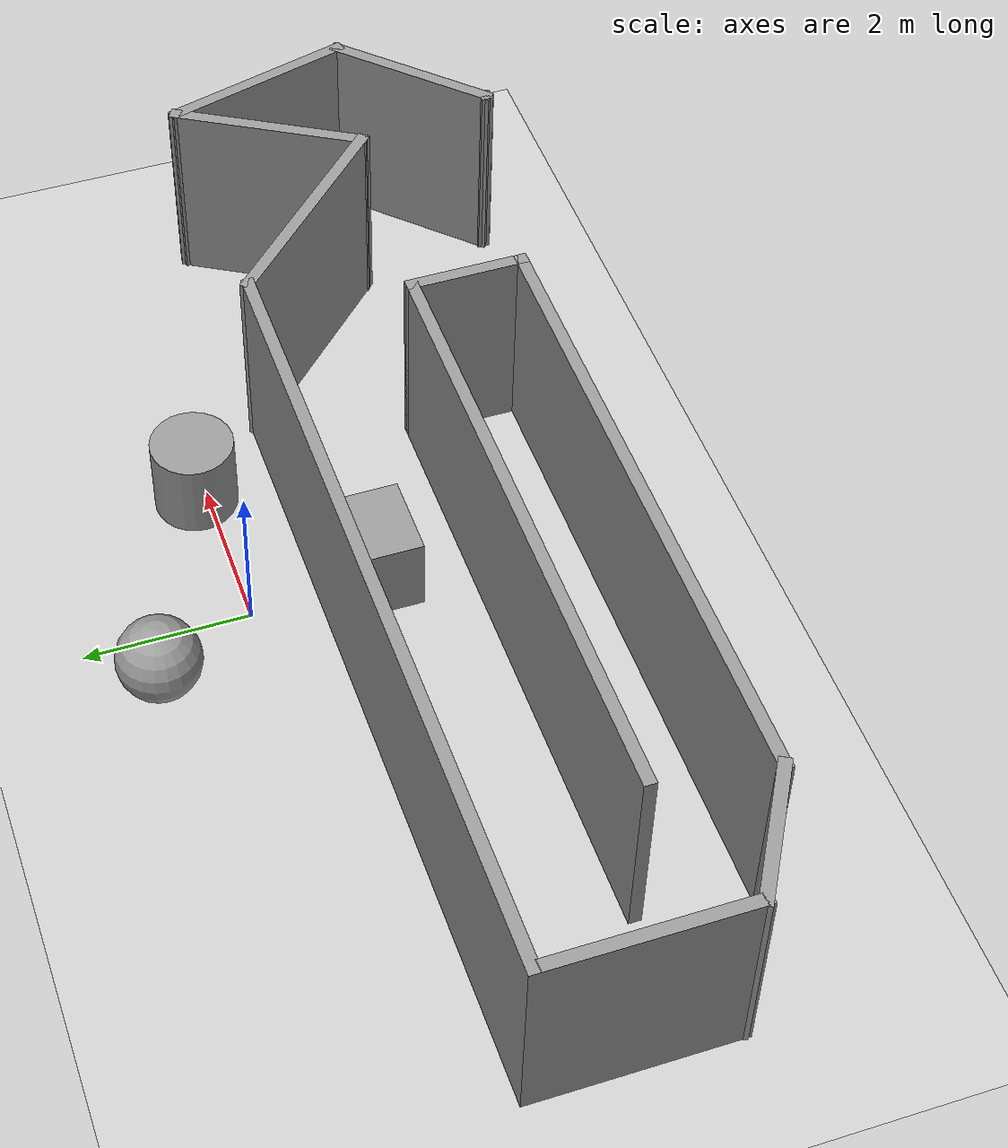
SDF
<sdf version="1.6">
 <world name="default">
  <light name="sun" type="directional">
   <pose>0 0 10 0 -0 0</pose>
   <diffuse>0.8 0.8 0.8 1</diffuse>
   <specular>0.2 0.2 0.2 1</specular>
   <attenuation>
    <range>1000</range>
    <constant>0.9</constant>
    <linear>0.01</linear>
    <quadratic>0.001</quadratic>
   </attenuation>
   <direction>-0.5 0.1 -0.9</direction>
  </light>
  <model name="ground_plane">
   <static>1</static>
   <link name="link">
    <collision name="collision">
     <geometry><plane><normal>0 0 1</normal><size>100 100</size></plane></geometry>
     <surface><friction><ode><mu>100</mu><mu2>50</mu2></ode></friction></surface>
    </collision>
    <visual name="visual">
     <cast_shadows>0</cast_shadows>
     <geometry><plane><normal>0 0 1</normal><size>100 100</size></plane></geometry>
     <material>
      <script><uri>file://media/materials/scripts/gazebo.material</uri><name>Gazebo/Grey</name></script>
     </material>
    </visual>
   </link>
  </model>
  <gravity>0 0 -9.8</gravity>
  <magnetic_field>6e-06 2.3e-05 -4.2e-05</magnetic_field>
  <atmosphere type="adiabatic"/>
  <physics name="default_physics" default="0" type="ode">
   <max_step_size>0.001</max_step_size>
   <real_time_factor>1</real_time_factor>
   <real_time_update_rate>1000</real_time_update_rate>
  </physics>
  <scene><ambient>0.4 0.4 0.4 1</ambient><background>0.7 0.7 0.7 1</background><shadows>1</shadows></scene>
  <spherical_coordinates>
   <surface_model>EARTH_WGS84</surface_model>
   <latitude_deg>0</latitude_deg>
   <longitude_deg>0</longitude_deg>
   <elevation>0</elevation>
   <heading_deg>0</heading_deg>
  </spherical_coordinates>
  <model name="unit_box">
   <pose>0.068124 -1.45501 0.499995 1e-05 0 1e-06</pose>
   <link name="link">
    <inertial>
     <mass>1</mass>
     <inertia>
      <ixx>0.166667</ixx>
      <ixy>0</ixy>
      <ixz>0</ixz>
      <iyy>0.166667</iyy>
      <iyz>0</iyz>
      <izz>0.166667</izz>
     </inertia>
    </inertial>
    <collision name="collision"><geometry><box><size>1 1 1</size></box></geometry></collision>
    <visual name="visual">
     <geometry><box><size>1 1 1</size></box></geometry>
     <material>
      <script><name>Gazebo/Grey</name><uri>file://media/materials/scripts/gazebo.material</uri></script>
     </material>
    </visual>
   </link>
  </model>
  <model name="unit_cylinder">
   <pose>1.93755 0.138894 0.499993 -3e-06 -4e-06 -0</pose>
   <link name="link">
    <inertial>
     <mass>1</mass>
     <inertia><ixx>0.145833</ixx><ixy>0</ixy><ixz>0</ixz><iyy>0.145833</iyy><iyz>0</iyz><izz>0.125</izz></inertia>
    </inertial>
    <collision name="collision">
     <geometry><cylinder><radius>0.5</radius><length>1</length></cylinder></geometry>
    </collision>
    <visual name="visual">
     <geometry><cylinder><radius>0.5</radius><length>1</length></cylinder></geometry>
     <material>
      <script><name>Gazebo/Grey</name><uri>file://media/materials/scripts/gazebo.material</uri></script>
     </material>
    </visual>
   </link>
  </model>
  <model name="unit_sphere">
   <pose>-0.651363 1.24379 0.5 0 -0 0</pose>
   <link name="link">
    <inertial>
     <mass>1</mass>
     <inertia><ixx>0.1</ixx><ixy>0</ixy><ixz>0</ixz><iyy>0.1</iyy><iyz>0</iyz><izz>0.1</izz></inertia>
    </inertial>
    <collision name="collision"><geometry><sphere><radius>0.5</radius></sphere></geometry></collision>
    <visual name="visual">
     <geometry><sphere><radius>0.5</radius></sphere></geometry>
     <material>
      <script><name>Gazebo/Grey</name><uri>file://media/materials/scripts/gazebo.material</uri></script>
     </material>
    </visual>
   </link>
  </model>
  <plugin name="collision_map_creator" filename="/home/workspace/catkin_ws/libcollision_map_creator.so"/>
  <model name="editor">
   <pose>-0.094594 -2.73933 0 0 -0 0</pose>
   <link name="Wall_0">
    <collision name="Wall_0_Collision">
     <geometry><box><size>7.5 0.15 2.5</size></box></geometry>
     <pose>0 0 1.25 0 -0 0</pose>
    </collision>
    <visual name="Wall_0_Visual">
     <pose>0 0 1.25 0 -0 0</pose>
     <geometry><box><size>7.5 0.15 2.5</size></box></geometry>
     <material>
      <script><uri>file://media/materials/scripts/gazebo.material</uri><name>Gazebo/Grey</name></script>
      <ambient>1 1 1 1</ambient>
     </material>
     <meta><layer>0</layer></meta>
    </visual>
    <pose>-1.39041 0.059327 0 0 -0 0</pose>
   </link>
   <link name="Wall_1">
    <collision name="Wall_1_Collision">
     <geometry><box><size>1.5 0.15 2.5</size></box></geometry>
     <pose>0 0 1.25 0 -0 0</pose>
    </collision>
    <visual name="Wall_1_Visual">
     <pose>0 0 1.25 0 -0 0</pose>
     <geometry><box><size>1.5 0.15 2.5</size></box></geometry>
     <material>
      <script><uri>file://media/materials/scripts/gazebo.material</uri><name>Gazebo/Grey</name></script>
      <ambient>1 1 1 1</ambient>
     </material>
     <meta><layer>0</layer></meta>
    </visual>
    <pose>2.28459 -0.615673 0 0 0 -1.5708</pose>
   </link>
   <link name="Wall_10">
    <collision name="Wall_10_Collision">
     <geometry><box><size>0.16 0.15 2.5</size></box></geometry>
     <pose>0 0 1.25 0 -0 0</pose>
    </collision>
    <visual name="Wall_10_Visual">
     <pose>0 0 1.25 0 -0 0</pose>
     <geometry><box><size>0.16 0.15 2.5</size></box></geometry>
     <material>
      <script><uri>file://media/materials/scripts/gazebo.material</uri><name>Gazebo/Grey</name></script>
      <ambient>1 1 1 1</ambient>
     </material>
     <meta><layer>0</layer></meta>
    </visual>
    <pose>5.21751 -1.87562 0 0 -0 0</pose>
   </link>
   <link name="Wall_2">
    <collision name="Wall_2_Collision">
     <geometry><box><size>7.75 0.15 2.5</size></box></geometry>
     <pose>0 0 1.25 0 -0 0</pose>
    </collision>
    <visual name="Wall_2_Visual">
     <pose>0 0 1.25 0 -0 0</pose>
     <geometry><box><size>7.75 0.15 2.5</size></box></geometry>
     <material>
      <script><uri>file://media/materials/scripts/gazebo.material</uri><name>Gazebo/Grey</name></script>
      <ambient>1 1 1 1</ambient>
     </material>
     <meta><layer>0</layer></meta>
    </visual>
    <pose>-1.51541 -1.29067 0 0 -0 3.14159</pose>
   </link>
   <link name="Wall_3">
    <collision name="Wall_3_Collision">
     <geometry><box><size>1.75 0.15 2.5</size></box></geometry>
     <pose>0 0 1.25 0 -0 0</pose>
    </collision>
    <visual name="Wall_3_Visual">
     <pose>0 0 1.25 0 -0 0</pose>
     <geometry><box><size>1.75 0.15 2.5</size></box></geometry>
     <material>
      <script><uri>file://media/materials/scripts/gazebo.material</uri><name>Gazebo/Grey</name></script>
      <ambient>1 1 1 1</ambient>
     </material>
     <meta><layer>0</layer></meta>
    </visual>
    <pose>-6.00823 -0.890673 0 0 -0 2.61799</pose>
   </link>
   <link name="Wall_4">
    <collision name="Wall_4_Collision">
     <geometry><box><size>2.5 0.15 2.5</size></box></geometry>
     <pose>0 0 1.25 0 -0 0</pose>
    </collision>
    <visual name="Wall_4_Visual">
     <pose>0 0 1.25 0 -0 0</pose>
     <geometry><box><size>2.5 0.15 2.5</size></box></geometry>
     <material>
      <script><uri>file://media/materials/scripts/gazebo.material</uri><name>Gazebo/Grey</name></script>
      <ambient>1 1 1 1</ambient>
     </material>
     <meta><layer>0</layer></meta>
    </visual>
    <pose>-6.70105 0.684327 0 0 -0 1.5708</pose>
   </link>
   <link name="Wall_5">
    <collision name="Wall_5_Collision">
     <geometry><box><size>9.75 0.15 2.5</size></box></geometry>
     <pose>0 0 1.25 0 -0 0</pose>
    </collision>
    <visual name="Wall_5_Visual">
     <pose>0 0 1.25 0 -0 0</pose>
     <geometry><box><size>9.75 0.15 2.5</size></box></geometry>
     <material>
      <script><uri>file://media/materials/scripts/gazebo.material</uri><name>Gazebo/Grey</name></script>
      <ambient>1 1 1 1</ambient>
     </material>
     <meta><layer>0</layer></meta>
    </visual>
    <pose>-1.90105 1.85933 0 0 -0 0</pose>
   </link>
   <link name="Wall_6">
    <collision name="Wall_6_Collision">
     <geometry><box><size>3 0.15 2.5</size></box></geometry>
     <pose>0 0 1.25 0 -0 0</pose>
    </collision>
    <visual name="Wall_6_Visual">
     <pose>0 0 1.25 0 -0 0</pose>
     <geometry><box><size>3 0.15 2.5</size></box></geometry>
     <material>
      <script><uri>file://media/materials/scripts/gazebo.material</uri><name>Gazebo/Grey</name></script>
      <ambient>1 1 1 1</ambient>
     </material>
     <meta><layer>0</layer></meta>
    </visual>
    <pose>3.90658 0.8517 0 0 0 -0.785398</pose>
   </link>
   <link name="Wall_7">
    <collision name="Wall_7_Collision">
     <geometry><box><size>2.5 0.15 2.5</size></box></geometry>
     <pose>0 0 1.25 0 -0 0</pose>
    </collision>
    <visual name="Wall_7_Visual">
     <pose>0 0 1.25 0 -0 0</pose>
     <geometry><box><size>2.5 0.15 2.5</size></box></geometry>
     <material>
      <script><uri>file://media/materials/scripts/gazebo.material</uri><name>Gazebo/Grey</name></script>
      <ambient>1 1 1 1</ambient>
     </material>
     <meta><layer>0</layer></meta>
    </visual>
    <pose>5.50171 0.861652 0 0 -0 1.0472</pose>
   </link>
   <link name="Wall_8">
    <collision name="Wall_8_Collision">
     <geometry><box><size>2.5 0.15 2.5</size></box></geometry>
     <pose>0 0 1.25 0 -0 0</pose>
    </collision>
    <visual name="Wall_8_Visual">
     <pose>0 0 1.25 0 -0 0</pose>
     <geometry><box><size>2.5 0.15 2.5</size></box></geometry>
     <material>
      <script><uri>file://media/materials/scripts/gazebo.material</uri><name>Gazebo/Grey</name></script>
      <ambient>1 1 1 1</ambient>
     </material>
     <meta><layer>0</layer></meta>
    </visual>
    <pose>6.39332 0.744269 0 0 0 -1.309</pose>
   </link>
   <link name="Wall_9">
    <collision name="Wall_9_Collision">
     <geometry><box><size>2.25 0.15 2.5</size></box></geometry>
     <pose>0 0 1.25 0 -0 0</pose>
    </collision>
    <visual name="Wall_9_Visual">
     <pose>0 0 1.25 0 -0 0</pose>
     <geometry><box><size>2.25 0.15 2.5</size></box></geometry>
     <material>
      <script><uri>file://media/materials/scripts/gazebo.material</uri><name>Gazebo/Grey</name></script>
      <ambient>1 1 1 1</ambient>
     </material>
     <meta><layer>0</layer></meta>
    </visual>
    <pose>5.95497 -1.13316 0 0 0 -2.35619</pose>
   </link>
   <static>1</static>
  </model>
 </world>
</sdf>
